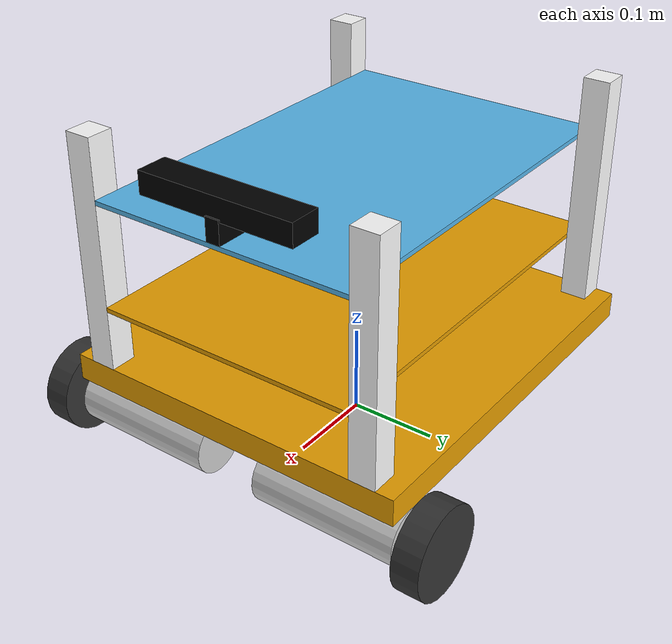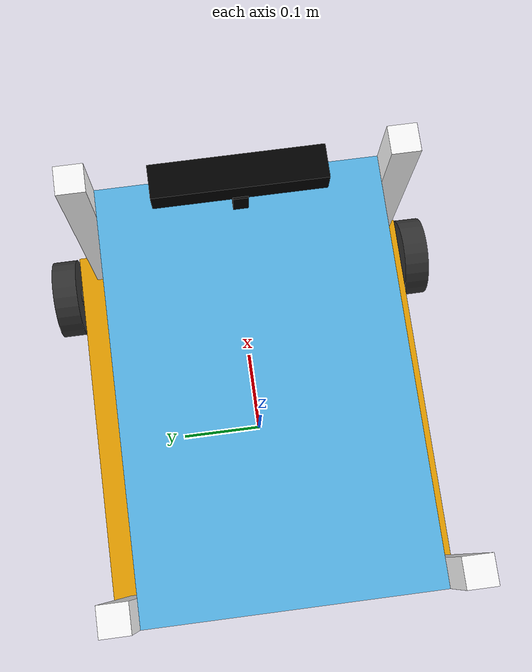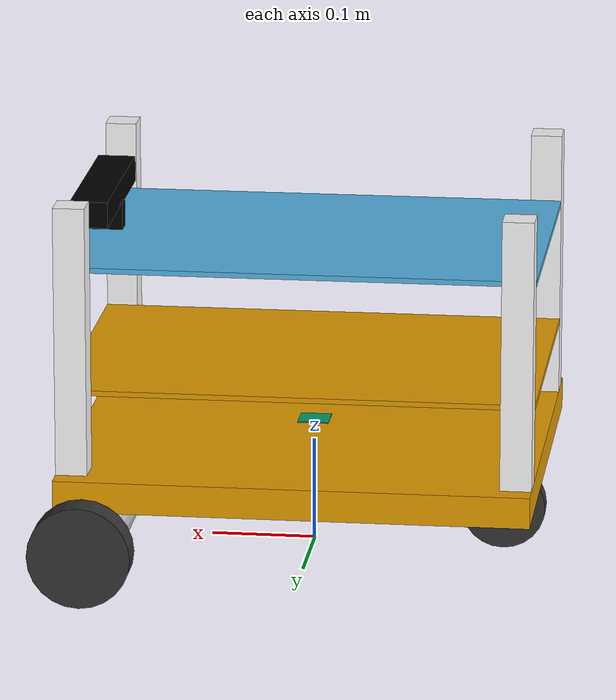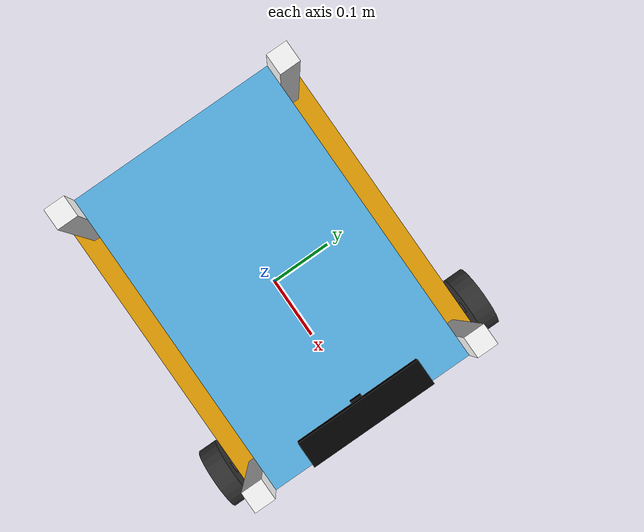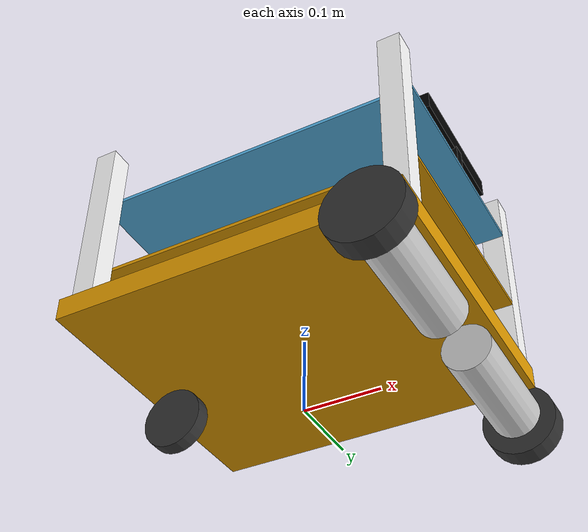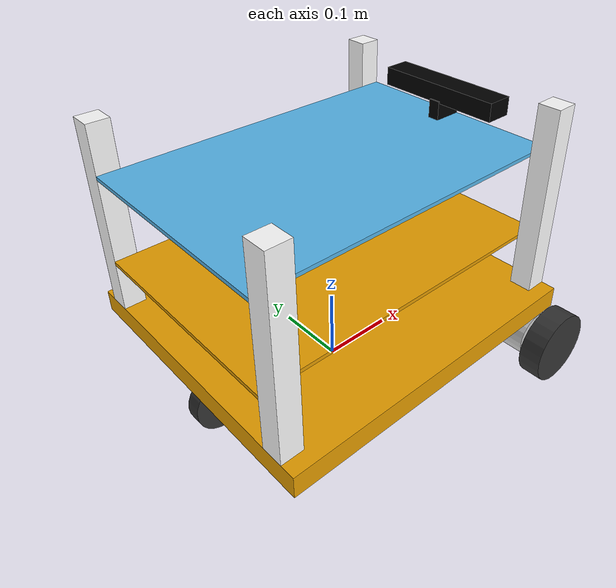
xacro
<?xml version="1.0"?>
<robot xmlns:xacro="http://ros.org/wiki/xacro" name="robu">

    <!-- Dimensions -->
    <xacro:property name="base_x" value="0.45" />
    <xacro:property name="base_y" value="0.40" />
    <xacro:property name="base_z" value="0.03" />

    <xacro:property name="pillar_x" value="0.03" />
    <xacro:property name="pillar_y" value="0.03" />
    <xacro:property name="pillar_z" value="0.26" />
    <xacro:property name="pillar_origin_x" value="${(base_x/2)-(pillar_x/2)}" />
    <xacro:property name="pillar_origin_y" value="${(base_y/2)-(0.02+(pillar_y/2))}" />
    <xacro:property name="pillar_origin_z" value="${(pillar_z/2)+(base_z/2)}" />

    <xacro:property name="plf_x" value="0.45" />
    <xacro:property name="plf_y" value="0.30" />
    <xacro:property name="plf_z" value="0.005" />
    <xacro:property name="plf1_origin_z" value="${(base_z/2)+(plf_z/2)+0.07}" />
    <xacro:property name="plf2_origin_z" value="${(base_z/2)+(plf_z/2)+0.19}" />

    <xacro:property name="camera_base_x" value="0.04" />
    <xacro:property name="camera_base_y" value="0.016" />
    <xacro:property name="camera_base_z" value="0.026" />
    <xacro:property name="camera_origin_x" value="${(base_x/2)-(camera_base_x/2)}" />
    <xacro:property name="camera_origin_z" value="${(plf_z/2)+(camera_base_z/2)}" />

    <xacro:property name="motor_x" value="0.06" />
    <xacro:property name="motor_y" value="0.165" />
    <xacro:property name="motor_z" value="0.065" />
    <xacro:property name="motor_r" value="0.032" />
    <xacro:property name="motor_l" value="0.165" />

    <xacro:property name="m_wheel_r" value="0.01" />
    <xacro:property name="m_wheel_l" value="0.01" />
    <xacro:property name="m_wheel_origin_y" value="${(motor_l/2)+(m_wheel_l/2)}" />

    <xacro:property name="wheel_r" value="0.049" />
    <xacro:property name="wheel_l" value="0.03" />
    <xacro:property name="wheel_origin_y" value="${(m_wheel_l/2)+(wheel_l/2)}" />

    <xacro:property name="caster_r" value="${(wheel_r+motor_r)/2}" />
    <xacro:property name="caster_l" value="0.02" />
    <xacro:property name="caster_origin_x" value="${(base_x/2)-(caster_r)}" />
    <xacro:property name="caster_origin_z" value="${(base_z/2)+(caster_r)}" />

    <!-- Base and frames -->
    <link name="base_link">
        <visual>
            <geometry>
                <box size="${base_x} ${base_y} ${base_z}" />
            </geometry>
        </visual>
    </link>

    <link name="base_footprint" />

    <joint name="base_footprint_to_base" type="fixed">
        <parent link="base_footprint" />
        <child link="base_link" />
        <origin xyz="0 0 ${((base_z/2)+(2*caster_r))}" rpy="0.0 0.0 0.0" />
    </joint>

    <link name="imu_link">
        <visual>
            <geometry>
                <box size="0.03 0.03 0.001" />
            </geometry>
        </visual>
    </link>
    <joint name="imu_joint" type="fixed">
        <origin xyz="0.0 0.0 0.025" rpy="0.0 0.0 0.0" />
        <parent link="base_link" />
        <child link="imu_link" />
    </joint>

    <link name="odom" />
    <joint name="odom_to_base_footprint" type="fixed">
        <origin xyz="0.0 0.0 0.0" rpy="0.0 0.0 0.0" />
        <parent link="odom" />
        <child link="base_footprint" />
    </joint>

    <!-- PILLARS -->
    <link name="pillar_fr_link">
        <visual>
            <geometry>
                <box size="${pillar_x} ${pillar_y} ${pillar_z}" />
            </geometry>
            <material name="pillar_mat_fr">
                <color rgba="1.0 1.0 1.0 1.0" />
            </material>
        </visual>
    </link>
    <joint name="base_to_pillar_fr" type="fixed">
        <parent link="base_link" />
        <child link="pillar_fr_link" />
        <origin xyz="${pillar_origin_x} ${-pillar_origin_y} ${pillar_origin_z}" rpy="0.0 0.0 0.0" />
    </joint>

    <link name="pillar_fl_link">
        <visual>
            <geometry>
                <box size="${pillar_x} ${pillar_y} ${pillar_z}" />
            </geometry>
            <material name="pillar_mat_fl">
                <color rgba="1.0 1.0 1.0 1.0" />
            </material>
        </visual>
    </link>
    <joint name="base_to_pillar_fl" type="fixed">
        <parent link="base_link" />
        <child link="pillar_fl_link" />
        <origin xyz="${pillar_origin_x} ${pillar_origin_y} ${pillar_origin_z}" rpy="0.0 0.0 0.0" />
    </joint>

    <link name="pillar_br_link">
        <visual>
            <geometry>
                <box size="${pillar_x} ${pillar_y} ${pillar_z}" />
            </geometry>
            <material name="pillar_mat_br">
                <color rgba="1.0 1.0 1.0 1.0" />
            </material>
        </visual>
    </link>
    <joint name="base_to_pillar_br" type="fixed">
        <parent link="base_link" />
        <child link="pillar_br_link" />
        <origin xyz="${-pillar_origin_x} ${-pillar_origin_y} ${pillar_origin_z}" rpy="0.0 0.0 0.0" />
    </joint>

    <link name="pillar_bl_link">
        <visual>
            <geometry>
                <box size="${pillar_x} ${pillar_y} ${pillar_z}" />
            </geometry>
            <material name="pillar_mat_bl">
                <color rgba="1.0 1.0 1.0 1.0" />
            </material>
        </visual>
    </link>
    <joint name="base_to_pillar_bl" type="fixed">
        <parent link="base_link" />
        <child link="pillar_bl_link" />
        <origin xyz="${-pillar_origin_x} ${pillar_origin_y} ${pillar_origin_z}" rpy="0.0 0.0 0.0" />
    </joint>

    <!-- PLATFORMS -->
    <link name="plf_1_link">
        <visual>
            <geometry>
                <box size="${plf_x} ${plf_y} ${plf_z}" />
            </geometry>
        </visual>
    </link>
    <joint name="base_to_plf_1" type="fixed">
        <parent link="base_link" />
        <child link="plf_1_link" />
        <origin xyz="0.0 0.0 ${plf1_origin_z}" rpy="0.0 0.0 0.0" />
        <axis xyz="1.0 0.0 0.0" />
    </joint>

    <link name="plf_2_link">
        <visual>
            <geometry>
                <box size="${plf_x} ${plf_y} ${plf_z}" />
            </geometry>
        </visual>
    </link>
    <joint name="base_to_plf_2" type="fixed">
        <parent link="base_link" />
        <child link="plf_2_link" />
        <origin xyz="0.0 0.0 ${plf2_origin_z}" rpy="0.0 0.0 0.0" />
        <axis xyz="1.0 0.0 0.0" />
    </joint>

    <!-- CAMERA -->
    <link name="my_camera_base_link">
        <visual>
            <geometry>
                <box size="${camera_base_x} ${camera_base_y} ${camera_base_z}" />
            </geometry>
            <material name="camera_base_mat">
                <color rgba="0.0 0.0 0.0 1.0" />
            </material>
        </visual>
    </link>
    <joint name="base_to_camera_base" type="fixed">
        <parent link="plf_2_link" />
        <child link="my_camera_base_link" />
        <origin xyz="${camera_origin_x} 0.0 ${camera_origin_z}" rpy="0.0 0.0 0.0" />
        <axis xyz="1.0 0.0 0.0" />
    </joint>

    <link name="camera_link">
        <visual>
            <origin xyz="0.0 0.0 0.0" rpy="0.0 0.0 0.0" />
            <geometry>
                <box size="0.036 0.18 0.025" />
            </geometry>
            <material name="camera_mat">
                <color rgba="0.0 0.0 0.0 1.0" />
            </material>
        </visual>
    </link>
    <joint name="camera_base_to_camera" type="fixed">
        <parent link="my_camera_base_link" />
        <child link="camera_link" />
        <origin xyz="0.0 0.0 0.0225" rpy="0.0 0.0 0.0" />
        <axis xyz="1.0 0.0 0.0" />
    </joint>

    <!-- MOTORS -->
    <link name="motor_1_link">
        <visual>
            <origin xyz="0.0 0.0 0.0" rpy="1.57 0.0 0.0" />
            <geometry>
                <cylinder radius="${motor_r}" length="${motor_l}" />
            </geometry>
            <material name="motor_mat_1">
                <color rgba="0.8 0.8 0.8 1.0" />
            </material>
        </visual>
    </link>
    <joint name="base_to_motor_1" type="fixed">
        <parent link="base_link" />
        <child link="motor_1_link" />
        <origin xyz="${base_x/2-motor_x/2} ${-(base_y/2-motor_y/2)} ${-(base_z/2+motor_z/2)}" rpy="0.0 0.0 0.0" />
        <axis xyz="1.0 0.0 0.0" />
    </joint>

    <link name="motor_2_link">
        <visual>
            <origin xyz="0.0 0.0 0.0" rpy="1.57 0.0 0.0" />
            <geometry>
                <cylinder radius="${motor_r}" length="${motor_l}" />
            </geometry>
            <material name="motor_mat_2">
                <color rgba="0.8 0.8 0.8 1.0" />
            </material>
        </visual>
    </link>
    <joint name="base_to_motor_2" type="fixed">
        <parent link="base_link" />
        <child link="motor_2_link" />
        <origin xyz="${base_x/2-motor_x/2} ${(base_y/2-motor_y/2)} ${-(base_z/2+motor_z/2)}" rpy="0.0 0.0 0.0" />
        <axis xyz="1.0 0.0 0.0" />
    </joint>

    <!-- MOTOR WHEEL LINKS -->
    <link name="right_m_wheel_link">
        <visual>
            <geometry>
                <cylinder radius="${m_wheel_r}" length="${m_wheel_l}" />
            </geometry>
            <material name="m_wheel_right_mat">
                <color rgba="0.2 0.2 0.2 1.0" />
            </material>
            <origin xyz="0.0 0.0 0.0" rpy="1.57 0.0 0.0" />
        </visual>
    </link>
    <joint name="base_to_right_m_wheel" type="fixed">
        <parent link="motor_1_link" />
        <child link="right_m_wheel_link" />
        <origin xyz="0.0 ${-m_wheel_origin_y} 0.0" rpy="0.0 0.0 0.0" />
        <axis xyz="0.0 1.0 0.0" />
    </joint>

    <link name="left_m_wheel_link">
        <visual>
            <geometry>
                <cylinder radius="${m_wheel_r}" length="${m_wheel_l}" />
            </geometry>
            <material name="m_wheel_left_mat">
                <color rgba="0.2 0.2 0.2 1.0" />
            </material>
            <origin xyz="0.0 0.0 0.0" rpy="1.57 0.0 0.0" />
        </visual>
    </link>
    <joint name="base_to_left_m_wheel" type="fixed">
        <parent link="motor_2_link" />
        <child link="left_m_wheel_link" />
        <origin xyz="0.0 ${m_wheel_origin_y} 0.0" rpy="0.0 0.0 0.0" />
        <axis xyz="0.0 1.0 0.0" />
    </joint>

    <!-- WHEELS -->
    <link name="right_wheel_link">
        <visual>
            <geometry>
                <cylinder radius="${wheel_r}" length="${wheel_l}" />
            </geometry>
            <material name="wheel_right_mat">
                <color rgba="0.2 0.2 0.2 1.0" />
            </material>
            <origin xyz="0.0 0.0 0.0" rpy="1.57 0.0 0.0" />
        </visual>
    </link>
    <joint name="base_to_right_wheel" type="continuous">
        <parent link="right_m_wheel_link" />
        <child link="right_wheel_link" />
        <origin xyz="0.0 ${-wheel_origin_y} 0.0" rpy="0.0 0.0 0.0" />
        <axis xyz="0.0 1.0 0.0" />
    </joint>

    <link name="left_wheel_link">
        <visual>
            <geometry>
                <cylinder radius="${wheel_r}" length="${wheel_l}" />
            </geometry>
            <material name="wheel_left_mat">
                <color rgba="0.2 0.2 0.2 1.0" />
            </material>
            <origin xyz="0.0 0.0 0.0" rpy="1.57 0.0 0.0" />
        </visual>
    </link>
    <joint name="base_to_left_wheel" type="continuous">
        <parent link="left_m_wheel_link" />
        <child link="left_wheel_link" />
        <origin xyz="0.0 ${wheel_origin_y} 0.0" rpy="0.0 0.0 0.0" />
        <axis xyz="0.0 1.0 0.0" />
    </joint>

    <!-- CASTER -->
    <link name="casster_wheel_link">
        <visual>
            <geometry>
                <cylinder radius="${caster_r}" length="${caster_l}" />
            </geometry>
            <material name="caster_mat">
                <color rgba="0.2 0.2 0.2 1.0" />
            </material>
            <origin xyz="0.0 0.0 0.0" rpy="1.57 0.0 0.0" />
        </visual>
    </link>
    <joint name="base_to_casster_wheel" type="fixed">
        <parent link="base_link" />
        <child link="casster_wheel_link" />
        <origin xyz="${-caster_origin_x} 0.0 ${-caster_origin_z}" rpy="0.0 0.0 0.0" />
        <axis xyz="0.0 1.0 0.0" />
    </joint>

    <!-- ros2_control configuration using nandi_controller hardware plugin -->
    <ros2_control name="nandi_system" type="system">
        <hardware>
            <plugin>nandi_controller/NandiHardwareSystem</plugin>
            <param name="right_encoder_topic">right_encoder_counts</param>
            <param name="left_encoder_topic">left_encoder_counts</param>
            <param name="right_motor_topic">right_motor_speed_cmd</param>
            <param name="left_motor_topic">left_motor_speed_cmd</param>
            <param name="ticks_per_rev">4000</param>
            <param name="gear_ratio">35</param>
            <param name="encoder_on_motor_shaft">true</param>
            <param name="right_encoder_sign">-1</param>
            <param name="left_encoder_sign">-1</param>
        </hardware>

        <joint name="base_to_left_wheel">
            <command_interface name="velocity" />
            <state_interface name="position" />
            <state_interface name="velocity" />
        </joint>
        <joint name="base_to_right_wheel">
            <command_interface name="velocity" />
            <state_interface name="position" />
            <state_interface name="velocity" />
        </joint>
    </ros2_control>

</robot>
